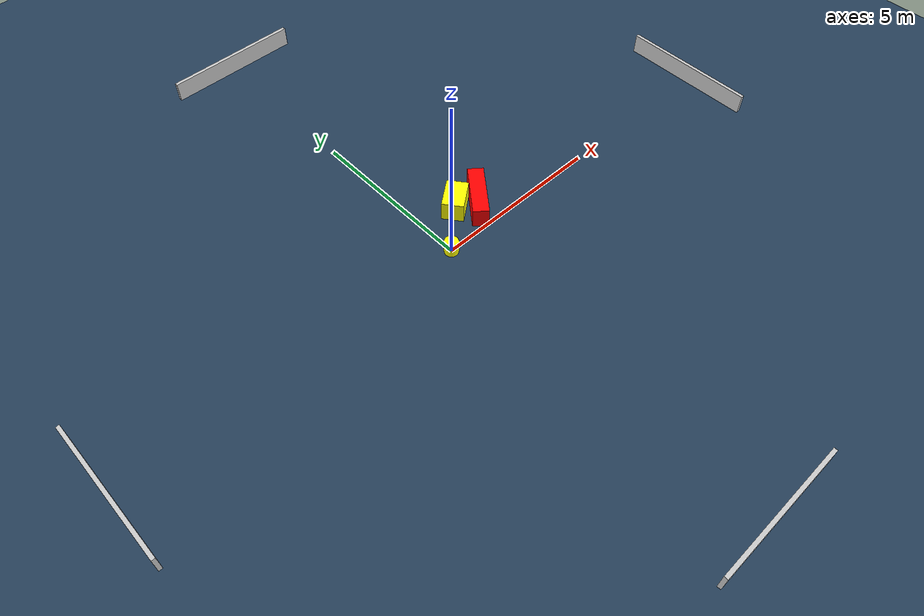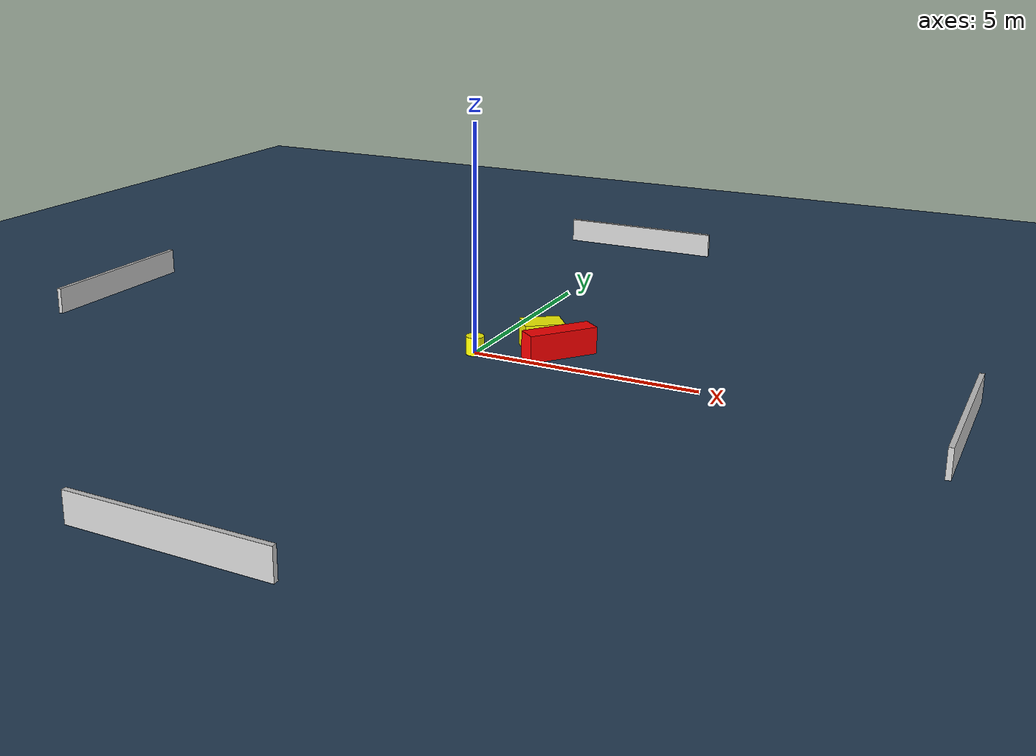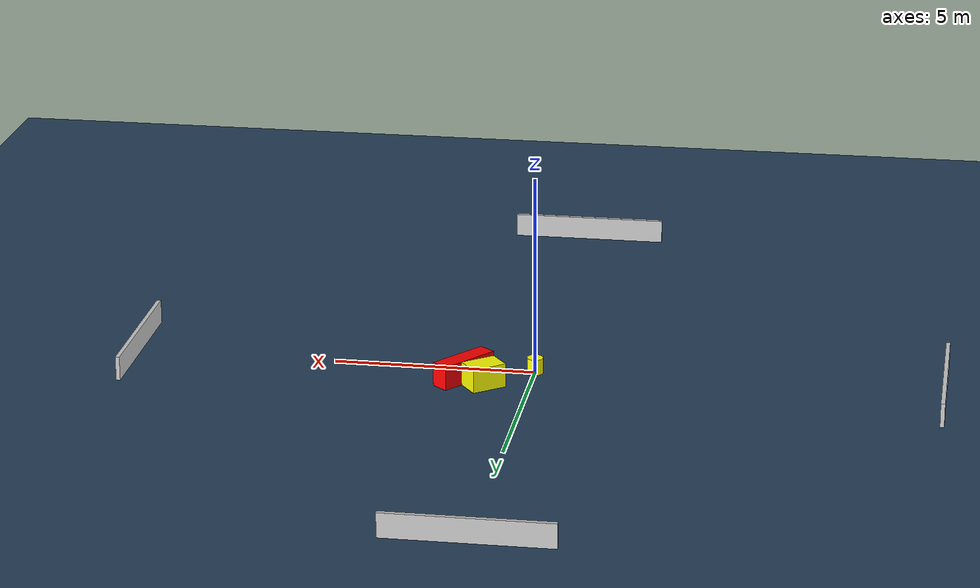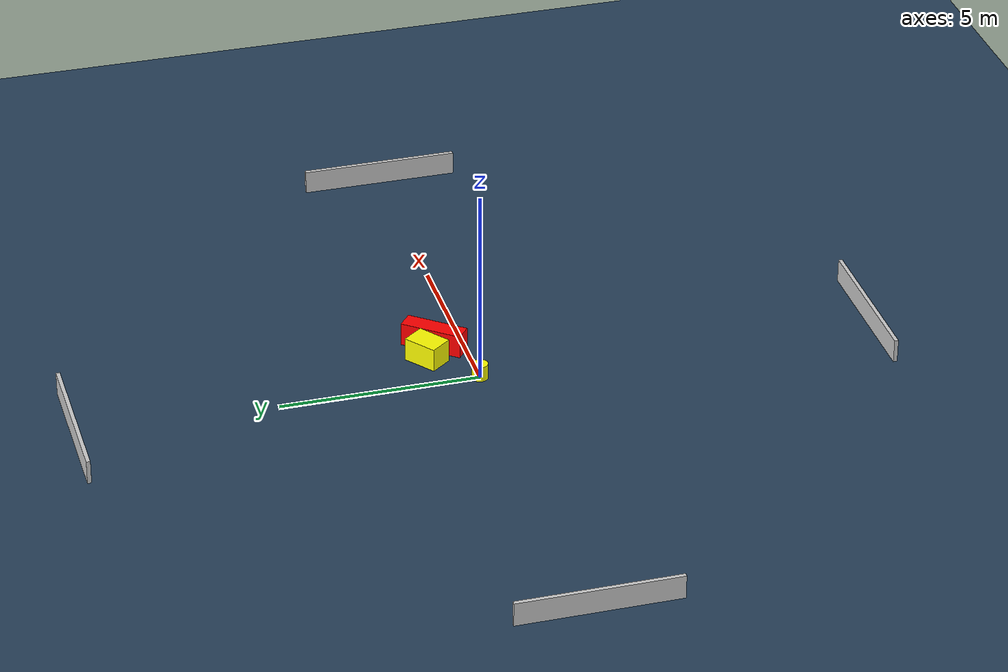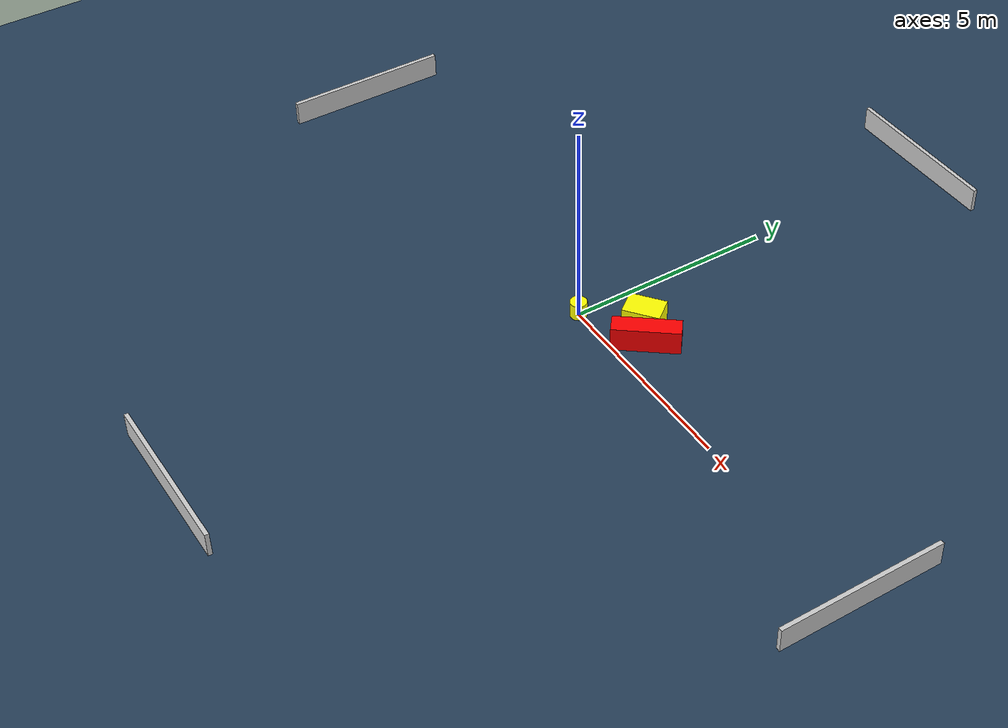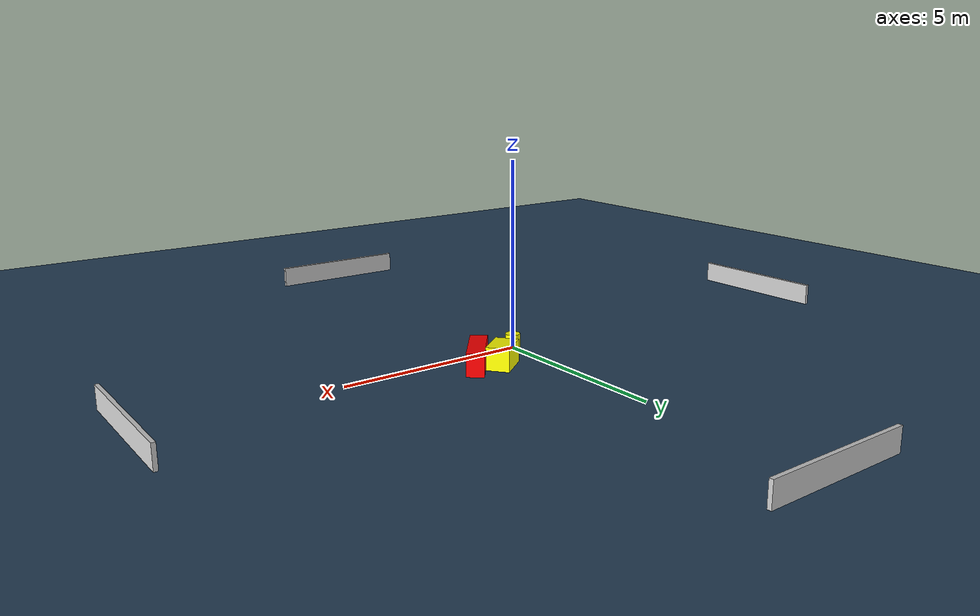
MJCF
<?xml version="1.0" ?>
<mujoco model="generated_environment">
  <option timestep="0.01" integrator="RK4" cone="elliptic"/>
  <default>
    <geom density="1"/>
  </default>
  <asset>
    <texture builtin="gradient" height="3072" name="skybox" rgb1="0.3 0.5 0.7" rgb2="0 0 0" type="skybox" width="512"/>
    <texture builtin="checker" height="300" name="groundplane" rgb1="0.2 0.3 0.4" rgb2="0.1 0.2 0.3" type="2d" width="300"/>
    <material name="groundplane" reflectance="0.2" texrepeat="5 5" texture="groundplane"/>
  </asset>
  <worldbody>
    <light dir="0 0 -1" directional="true" pos="0 0 1.5"/>
    <geom condim="3" friction="0.5 0.005 0.001" material="groundplane" name="floor" pos="0 0 0" size="0 0 0.05" type="plane"/>
    <body name="walls">
      <geom name="wall_1" condim="4" pos="-10.0 0.0 0.3" rgba="0.800000011920929 0.800000011920929 0.800000011920929 1.0" size="0.05 2.0 0.3" type="box"/>
      <geom name="wall_2" condim="4" pos="10.0 0.0 0.3" rgba="0.800000011920929 0.800000011920929 0.800000011920929 1.0" size="0.05 2.0 0.3" type="box"/>
      <geom name="wall_3" condim="4" pos="0.0 -10.0 0.3" rgba="0.800000011920929 0.800000011920929 0.800000011920929 1.0" size="2.0 0.05 0.3" type="box"/>
      <geom name="wall_4" condim="4" pos="0.0 10.0 0.3" rgba="0.800000011920929 0.800000011920929 0.800000011920929 1.0" size="2.0 0.05 0.3" type="box"/>
    </body>
    <body name="robot">
      <joint name="joint_x" type="slide" pos="0 0 0" axis="1 0 0"/>
      <joint name="joint_y" type="slide" pos="0 0 0" axis="0 1 0"/>
      <geom name="robot" type="cylinder" pos="0.0 0.0 0.2" size="0.2 0.2 0.0" mass="5.0" friction="1.0 0.005 0.0001" condim="4" rgba="1.0 1.0 0.0 1.0"/>
    </body>
    <body name="obstacle_1_movable">
      <geom name="obstacle_1_movable" condim="4" pos="1.1081687928324102 1.0354934652549974 0.3" euler="0 0 127.5080028888297" friction="0.0 0.005 0.001" rgba="1.0 1.0 0.0 1.0" size="0.306216522838955 0.4438031012630814 0.3" type="box" mass="0.1"/>
      <joint type="free"/>
    </body>
    <body name="obstacle_2_static">
      <geom name="obstacle_2_static" condim="4" pos="1.6597287328134687 0.7120529797203624 0.3" euler="0 0 321.52757337166594" friction="0.0 0.005 0.001" rgba="1.0 0.0 0.0 1.0" size="0.22652564911340234 0.7885196179174754 0.3" type="box"/>
    </body>
  </worldbody>
  <actuator>
    <motor name="actuator_x" joint="joint_x" gear="1" ctrlrange="-1 1"/>
    <motor name="actuator_y" joint="joint_y" gear="1" ctrlrange="-1 1"/>
  </actuator>
</mujoco>
